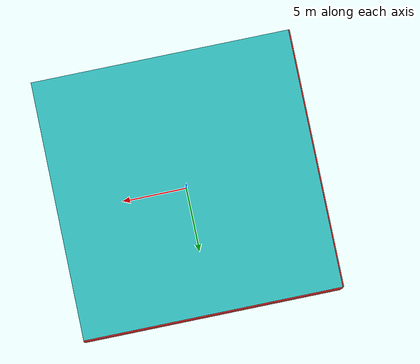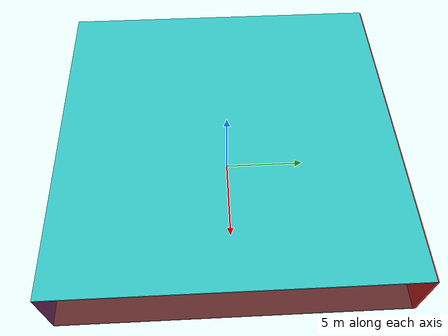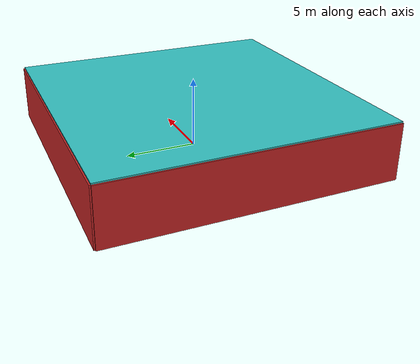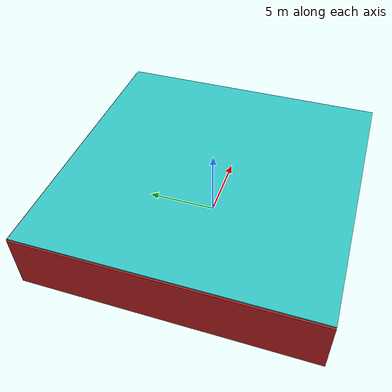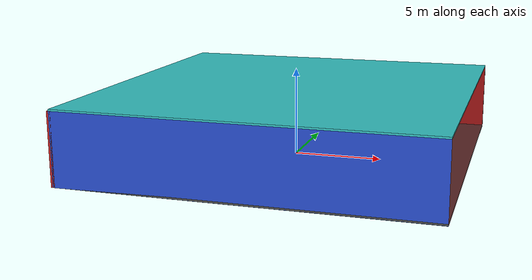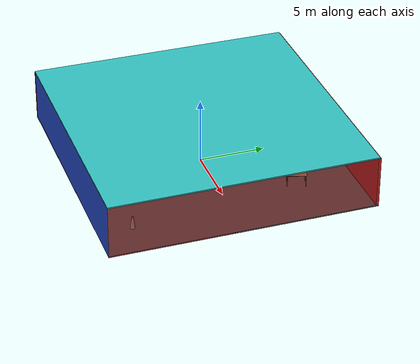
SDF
<sdf version="1.4">
 <world name="default">
  <physics type="ode">
   <max_step_size>0.001</max_step_size>
   <real_time_factor>1</real_time_factor>
   <real_time_update_rate>1000</real_time_update_rate>
   <gravity>0 0 -9.8</gravity>
  </physics>
  <scene><ambient>0.4 0.4 0.4 1</ambient><background>0.7 0.7 0.7 1</background><shadows>1</shadows></scene>
  <model name="Surrounding">
   <static>1</static>
   <link name="Ceiling">
    <collision name="Ceiling_Collision"><geometry><box><size>20 20 0.1</size></box></geometry></collision>
    <visual name="Ceiling_Visual">
     <geometry><box><size>20 20 0.1</size></box></geometry>
     <material>
      <script><uri>file://media/materials/scripts/gazebo.material</uri><name>Gazebo/TurquoiseGlow</name></script>
     </material>
    </visual>
    <pose>0 0 4.05 0 0 0</pose>
   </link>
   <link name="Wall_South">
    <collision name="Wall_South_Collision">
     <geometry><box><size>20 0 4</size></box></geometry>
     <pose>0 0 2 0 -0 0</pose>
    </collision>
    <visual name="Wall_South_Visual">
     <pose>0 0 2 0 -0 0</pose>
     <geometry><box><size>20 0 4</size></box></geometry>
     <material>
      <script><uri>file://media/materials/scripts/gazebo.material</uri><name>Gazebo/BlueGlow</name></script>
     </material>
    </visual>
    <velocity_decay><linear>0</linear><angular>0</angular></velocity_decay>
    <pose>0 -10 0 0 -0 0</pose>
   </link>
   <link name="Wall_East">
    <collision name="Wall_21_Collision">
     <geometry><box><size>20 0 4</size></box></geometry>
     <pose>0 0 2 0 -0 0</pose>
    </collision>
    <visual name="Wall_21_Visual">
     <pose>0 0 2 0 -0 0</pose>
     <geometry><box><size>20 0 4</size></box></geometry>
     <material>
      <script><uri>file://media/materials/scripts/gazebo.material</uri><name>Gazebo/RedTransparent</name></script>
     </material>
    </visual>
    <velocity_decay><linear>0</linear><angular>0</angular></velocity_decay>
    <pose>10 0 0 0 -0 1.5708</pose>
   </link>
   <link name="Wall_North">
    <collision name="Wall_22_Collision">
     <geometry><box><size>20 0.2 4</size></box></geometry>
     <pose>0 0 2 0 -0 0</pose>
    </collision>
    <visual name="Wall_22_Visual">
     <pose>0 0 2 0 -0 0</pose>
     <geometry><box><size>20 0.2 4</size></box></geometry>
     <material>
      <script><uri>file://media/materials/scripts/gazebo.material</uri><name>Gazebo/RedGlow</name></script>
     </material>
    </visual>
    <velocity_decay><linear>0</linear><angular>0</angular></velocity_decay>
    <pose>0 10 0 0 -0 0</pose>
   </link>
   <link name="Wall_West">
    <collision name="Wall_23_Collision">
     <geometry><box><size>20 0.2 4</size></box></geometry>
     <pose>0 0 2 0 -0 0</pose>
    </collision>
    <visual name="Wall_23_Visual">
     <pose>0 0 2 0 -0 0</pose>
     <geometry><box><size>20 0.2 4</size></box></geometry>
     <material>
      <script><uri>file://media/materials/scripts/gazebo.material</uri><name>Gazebo/RedBright</name></script>
     </material>
    </visual>
    <velocity_decay><linear>0</linear><angular>0</angular></velocity_decay>
    <pose>-10 0 0 0 0 -1.5708</pose>
   </link>
   <link name="Ground_link">
    <collision name="collision">
     <pose>0 0 .05 0 -0 0</pose>
     <geometry><box><size>20 20 0.1</size></box></geometry>
    </collision>
    <visual name="visual">
     <pose>0 0 .05 0 -0 0</pose>
     <geometry><box><size>20 20 0.1</size></box></geometry>
     <material>
      <script><uri>file://media/materials/scripts/gazebo.material</uri><name>Gazebo/DarkGrey</name></script>
     </material>
    </visual>
   </link>
   <static>1</static>
  </model>
  <spherical_coordinates>
   <surface_model>EARTH_WGS84</surface_model>
   <latitude_deg>0</latitude_deg>
   <longitude_deg>0</longitude_deg>
   <elevation>0</elevation>
   <heading_deg>0</heading_deg>
  </spherical_coordinates>
  <light name="lightball_0" type="diffuse">
   <diffuse>0.8 0.8 0.8 1</diffuse>
   <specular>0.2 0.2 0.2 1</specular>
   <attenuation>
    <range>100</range>
    <constant>0.7</constant>
    <linear>0.01</linear>
    <quadratic>0.001</quadratic>
   </attenuation>
   <direction>-0.5 0.1 -0.9</direction>
   <pose>-6.21120799488 -1.67446927093 1.71674340755 0 0 0</pose>
  </light>
  <light name="lightball_1" type="diffuse">
   <diffuse>0.8 0.8 0.8 1</diffuse>
   <specular>0.2 0.2 0.2 1</specular>
   <attenuation>
    <range>100</range>
    <constant>0.7</constant>
    <linear>0.01</linear>
    <quadratic>0.001</quadratic>
   </attenuation>
   <direction>-0.5 0.1 -0.9</direction>
   <pose>-2.66640132421 -7.46453688585 1.11821445396 0 0 0</pose>
  </light>
  <light name="lightball_2" type="diffuse">
   <diffuse>0.8 0.8 0.8 1</diffuse>
   <specular>0.2 0.2 0.2 1</specular>
   <attenuation>
    <range>100</range>
    <constant>0.7</constant>
    <linear>0.01</linear>
    <quadratic>0.001</quadratic>
   </attenuation>
   <direction>-0.5 0.1 -0.9</direction>
   <pose>4.87191529943 -3.45966012381 2.1964376698 0 0 0</pose>
  </light>
  <light name="lightball_3" type="diffuse">
   <diffuse>0.8 0.8 0.8 1</diffuse>
   <specular>0.2 0.2 0.2 1</specular>
   <attenuation>
    <range>100</range>
    <constant>0.7</constant>
    <linear>0.01</linear>
    <quadratic>0.001</quadratic>
   </attenuation>
   <direction>-0.5 0.1 -0.9</direction>
   <pose>2.02835344514 2.76655286077 2.3545065122 0 0 0</pose>
  </light>
  <light name="lightball_4" type="diffuse">
   <diffuse>0.8 0.8 0.8 1</diffuse>
   <specular>0.2 0.2 0.2 1</specular>
   <attenuation>
    <range>100</range>
    <constant>0.7</constant>
    <linear>0.01</linear>
    <quadratic>0.001</quadratic>
   </attenuation>
   <direction>-0.5 0.1 -0.9</direction>
   <pose>8.91151093145 9.53759347136 3.54360110512 0 0 0</pose>
  </light>
  <light name="lightball_5" type="diffuse">
   <diffuse>0.8 0.8 0.8 1</diffuse>
   <specular>0.2 0.2 0.2 1</specular>
   <attenuation>
    <range>100</range>
    <constant>0.7</constant>
    <linear>0.01</linear>
    <quadratic>0.001</quadratic>
   </attenuation>
   <direction>-0.5 0.1 -0.9</direction>
   <pose>-0.160152473456 8.03047761572 1.57484318461 0 0 0</pose>
  </light>
  <light name="lightball_6" type="diffuse">
   <diffuse>0.8 0.8 0.8 1</diffuse>
   <specular>0.2 0.2 0.2 1</specular>
   <attenuation>
    <range>100</range>
    <constant>0.7</constant>
    <linear>0.01</linear>
    <quadratic>0.001</quadratic>
   </attenuation>
   <direction>-0.5 0.1 -0.9</direction>
   <pose>3.04141819763 8.55630051252 2.60822888486 0 0 0</pose>
  </light>
  <light name="lightball_7" type="diffuse">
   <diffuse>0.8 0.8 0.8 1</diffuse>
   <specular>0.2 0.2 0.2 1</specular>
   <attenuation>
    <range>100</range>
    <constant>0.7</constant>
    <linear>0.01</linear>
    <quadratic>0.001</quadratic>
   </attenuation>
   <direction>-0.5 0.1 -0.9</direction>
   <pose>-8.37576313839 0.706938131332 2.20401816361 0 0 0</pose>
  </light>
  <light name="lightball_8" type="diffuse">
   <diffuse>0.8 0.8 0.8 1</diffuse>
   <specular>0.2 0.2 0.2 1</specular>
   <attenuation>
    <range>100</range>
    <constant>0.7</constant>
    <linear>0.01</linear>
    <quadratic>0.001</quadratic>
   </attenuation>
   <direction>-0.5 0.1 -0.9</direction>
   <pose>0.933793293619 -9.751268711 1.06616529556 0 0 0</pose>
  </light>
  <light name="lightball_9" type="diffuse">
   <diffuse>0.8 0.8 0.8 1</diffuse>
   <specular>0.2 0.2 0.2 1</specular>
   <attenuation>
    <range>100</range>
    <constant>0.7</constant>
    <linear>0.01</linear>
    <quadratic>0.001</quadratic>
   </attenuation>
   <direction>-0.5 0.1 -0.9</direction>
   <pose>7.29377861168 0.731328989543 3.52269152496 0 0 0</pose>
  </light>
  <light name="lightball_10" type="diffuse">
   <diffuse>0.8 0.8 0.8 1</diffuse>
   <specular>0.2 0.2 0.2 1</specular>
   <attenuation>
    <range>100</range>
    <constant>0.7</constant>
    <linear>0.01</linear>
    <quadratic>0.001</quadratic>
   </attenuation>
   <direction>-0.5 0.1 -0.9</direction>
   <pose>9.36799585949 9.63193929112 2.25141651862 0 0 0</pose>
  </light>
  <include><uri>model://cabinet</uri><pose>-2.57608587814 -7.22228739139 0 0 0 2.38962321125</pose></include>
  <include><uri>model://cabinet</uri><pose>0.809611069054 -4.42921002541 0 0 0 0.609371341689</pose></include>
  <include><uri>model://cabinet</uri><pose>2.09912554556 1.13718288352 0 0 0 2.25300938117</pose></include>
  <include><uri>model://table</uri><pose>5.5048158929 5.50413641195 0 0 0 1.26957846318</pose></include>
  <include>
   <uri>model://construction_cone</uri>
   <pose>7.17186179585 -7.43582645399 0 0 0 0.0271194213034</pose>
  </include>
 </world>
</sdf>

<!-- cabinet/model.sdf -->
<sdf version="1.5">
  <model name="cabinet">
    <static>true</static>
    <link name="cabinet_bottom_plate">
      <inertial>
        <pose>0 0 -1 0 0 0</pose>
        <inertia>
          <ixx>2.050000</ixx>
          <ixy>0</ixy>
          <ixz>0</ixz>
          <iyy>2.050000</iyy>
          <iyz>0</iyz>
          <izz>2.050000</izz>
        </inertia>
        <mass>25.000000</mass>
      </inertial>
      <collision name="cabinet_bottom_plate_geom">
        <pose>0 0 0.010000 0 0 0</pose>
        <geometry>
          <box>
            <size>0.450000 0.450000 0.020000</size>
          </box>
        </geometry>
      </collision>
      <visual name="cabinet_bottom_plate_geom_visual">
        <pose>0 0 0.010000 0 0 0</pose>
        <geometry>
          <box>
            <size>0.450000 0.450000 0.020000</size>
          </box>
        </geometry>
        <material>
          <script>
            <uri>model://media/materials/scripts/gazebo.material</uri>
            <name>Gazebo/Wood</name>
          </script>
        </material>
      </visual>
      <collision name="cabinet_bottom_plate_geom_cabinet_back_plate">
        <pose>0.235000 0 0.510000 0 0 0</pose>
        <geometry>
          <box>
            <size>0.020000 0.450000 1.020000</size>
          </box>
        </geometry>
      </collision>
      <visual name="cabinet_bottom_plate_geom_cabinet_back_plate_visual">
        <pose>0.235000 0 0.510000 0 0 0</pose>
        <geometry>
          <box>
            <size>0.020000 0.450000 1.020000</size>
          </box>
        </geometry>
        <material>
          <script>
            <uri>model://media/materials/scripts/gazebo.material</uri>
            <name>Gazebo/Wood</name>
          </script>
        </material>
      </visual>
      <collision name="cabinet_bottom_plate_geom_cabinet_left_plate">
        <pose>0 0.235000 0.510000 0 0 0</pose>
        <geometry>
          <box>
            <size>0.450000 0.020000 1.020000</size>
          </box>
        </geometry>
      </collision>
      <visual name="cabinet_bottom_plate_geom_cabinet_left_plate_visual">
        <pose>0 0.235000 0.510000 0 0 0</pose>
        <geometry>
          <box>
            <size>0.450000 0.020000 1.020000</size>
          </box>
        </geometry>
        <material>
          <script>
            <uri>model://media/materials/scripts/gazebo.material</uri>
            <name>Gazebo/Wood</name>
          </script>
        </material>
      </visual>
      <collision name="cabinet_bottom_plate_geom_cabinet_middle_plate">
        <pose>0 0 0.510000 0 0 0</pose>
        <geometry>
          <box>
            <size>0.450000 0.450000 0.020000</size>
          </box>
        </geometry>
      </collision>
      <visual name="cabinet_bottom_plate_geom_cabinet_middle_plate_visual">
        <pose>0 0 0.510000 0 0 0</pose>
        <geometry>
          <box>
            <size>0.450000 0.450000 0.020000</size>
          </box>
        </geometry>
        <material>
          <script>
            <uri>model://media/materials/scripts/gazebo.material</uri>
            <name>Gazebo/Wood</name>
          </script>
        </material>
      </visual>
      <collision name="cabinet_bottom_plate_geom_cabinet_right_plate">
        <pose>0 -0.235000 0.510000 0 0 0</pose>
        <geometry>
          <box>
            <size>0.450000 0.020000 1.020000</size>
          </box>
        </geometry>
      </collision>
      <visual name="cabinet_bottom_plate_geom_cabinet_right_plate_visual">
        <pose>0 -0.235000 0.510000 0 0 0</pose>
        <geometry>
          <box>
            <size>0.450000 0.020000 1.020000</size>
          </box>
        </geometry>
        <material>
          <script>
            <uri>model://media/materials/scripts/gazebo.material</uri>
            <name>Gazebo/Wood</name>
          </script>
        </material>
      </visual>
      <collision name="cabinet_bottom_plate_geom_cabinet_top_plate">
        <pose>0 0 1.010000 0 0 0</pose>
        <geometry>
          <box>
            <size>0.450000 0.450000 0.020000</size>
          </box>
        </geometry>
      </collision>
      <visual name="cabinet_bottom_plate_geom_cabinet_top_plate_visual">
        <pose>0 0 1.010000 0 0 0</pose>
        <geometry>
          <box>
            <size>0.450000 0.450000 0.020000</size>
          </box>
        </geometry>
        <material>
          <script>
            <uri>model://media/materials/scripts/gazebo.material</uri>
            <name>Gazebo/Wood</name>
          </script>
        </material>
      </visual>
    </link>
  </model>
</sdf>

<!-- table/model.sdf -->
<sdf version="1.5">
  <model name="table">
    <static>true</static>
    <link name="link">
      <collision name="surface">
        <pose>0 0 1.0 0 0 0</pose>
        <geometry>
          <box>
            <size>1.5 0.8 0.03</size>
          </box>
        </geometry>
        <surface>
          <friction>
            <ode>
              <mu>0.6</mu>
              <mu2>0.6</mu2>
            </ode>
          </friction>
        </surface>
      </collision>
      <visual name="visual1">
        <pose>0 0 1.0 0 0 0</pose>
        <geometry>
          <box>
            <size>1.5 0.8 0.03</size>
          </box>
        </geometry>
        <material>
          <script>
            <uri>model://media/materials/scripts/gazebo.material</uri>
            <name>Gazebo/Wood</name>
          </script>
        </material>
      </visual>
      <collision name="front_left_leg">
        <pose>0.68 0.38 0.5 0 0 0</pose>
        <geometry>
          <cylinder>
            <radius>0.02</radius>
            <length>1.0</length>
          </cylinder>
        </geometry>
      </collision>
      <visual name="front_left_leg">
        <pose>0.68 0.38 0.5 0 0 0</pose>
        <geometry>
          <cylinder>
            <radius>0.02</radius>
            <length>1.0</length>
          </cylinder>
        </geometry>
        <material>
          <script>
            <uri>model://media/materials/scripts/gazebo.material</uri>
            <name>Gazebo/Grey</name>
          </script>
        </material>
      </visual>
      <collision name="front_right_leg">
        <pose>0.68 -0.38 0.5 0 0 0</pose>
        <geometry>
          <cylinder>
            <radius>0.02</radius>
            <length>1.0</length>
          </cylinder>
        </geometry>
      </collision>
      <visual name="front_right_leg">
        <pose>0.68 -0.38 0.5 0 0 0</pose>
        <geometry>
          <cylinder>
            <radius>0.02</radius>
            <length>1.0</length>
          </cylinder>
        </geometry>
        <material>
          <script>
            <uri>model://media/materials/scripts/gazebo.material</uri>
            <name>Gazebo/Grey</name>
          </script>
        </material>
      </visual>
      <collision name="back_right_leg">
        <pose>-0.68 -0.38 0.5 0 0 0</pose>
        <geometry>
          <cylinder>
            <radius>0.02</radius>
            <length>1.0</length>
          </cylinder>
        </geometry>
      </collision>
      <visual name="back_right_leg">
        <pose>-0.68 -0.38 0.5 0 0 0</pose>
        <geometry>
          <cylinder>
            <radius>0.02</radius>
            <length>1.0</length>
          </cylinder>
        </geometry>
        <material>
          <script>
            <uri>model://media/materials/scripts/gazebo.material</uri>
            <name>Gazebo/Grey</name>
          </script>
        </material>
      </visual>
      <collision name="back_left_leg">
        <pose>-0.68 0.38 0.5 0 0 0</pose>
        <geometry>
          <cylinder>
            <radius>0.02</radius>
            <length>1.0</length>
          </cylinder>
        </geometry>
      </collision>
      <visual name="back_left_leg">
        <pose>-0.68 0.38 0.5 0 0 0</pose>
        <geometry>
          <cylinder>
            <radius>0.02</radius>
            <length>1.0</length>
          </cylinder>
        </geometry>
        <material>
          <script>
            <uri>model://media/materials/scripts/gazebo.material</uri>
            <name>Gazebo/Grey</name>
          </script>
        </material>
      </visual>
    </link>
  </model>
</sdf>

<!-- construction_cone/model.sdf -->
<sdf version="1.5">
  <model name="Construction Cone">
    <link name="link">
      <collision name="collision">
        <geometry>
          <mesh>
            <scale>10 10 10</scale>
            <uri>file://isr-testbed/construction_cone/meshes/construction_cone.dae</uri>
          </mesh>
        </geometry>
      </collision>
      <visual name="visual">
        <geometry>
          <mesh>
            <scale>10 10 10</scale>
            <uri>file://isr-testbed/construction_cone/meshes/construction_cone.dae</uri>
          </mesh>
        </geometry>
      </visual>
    </link>
  </model>
</sdf>
